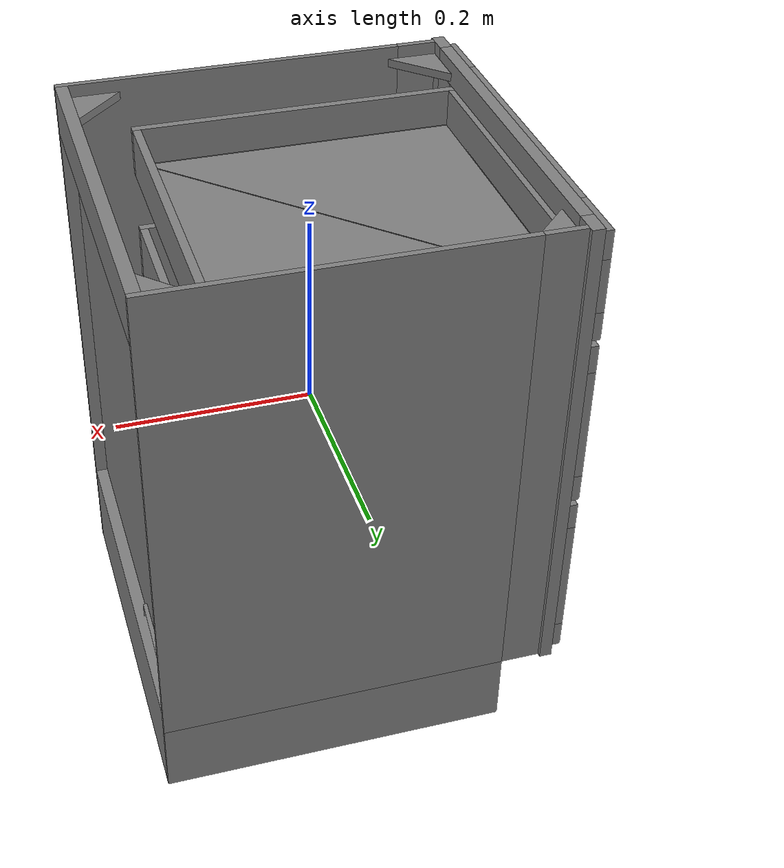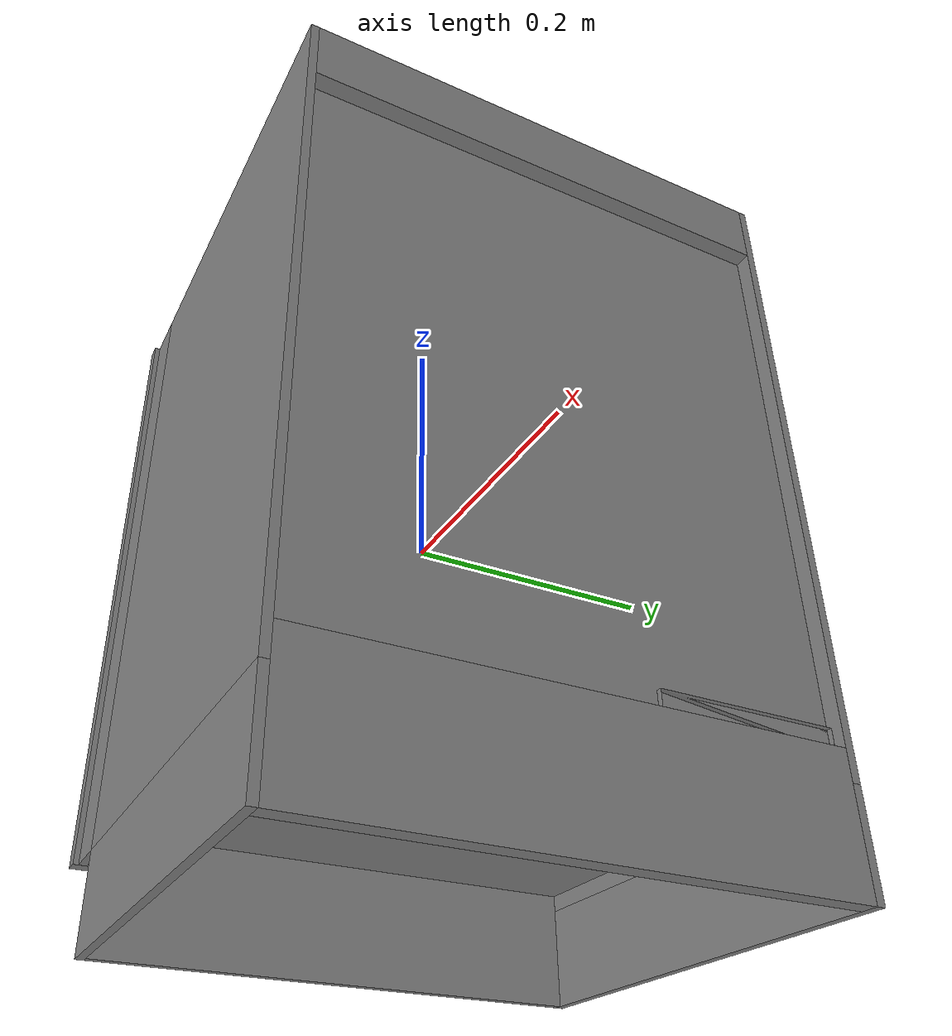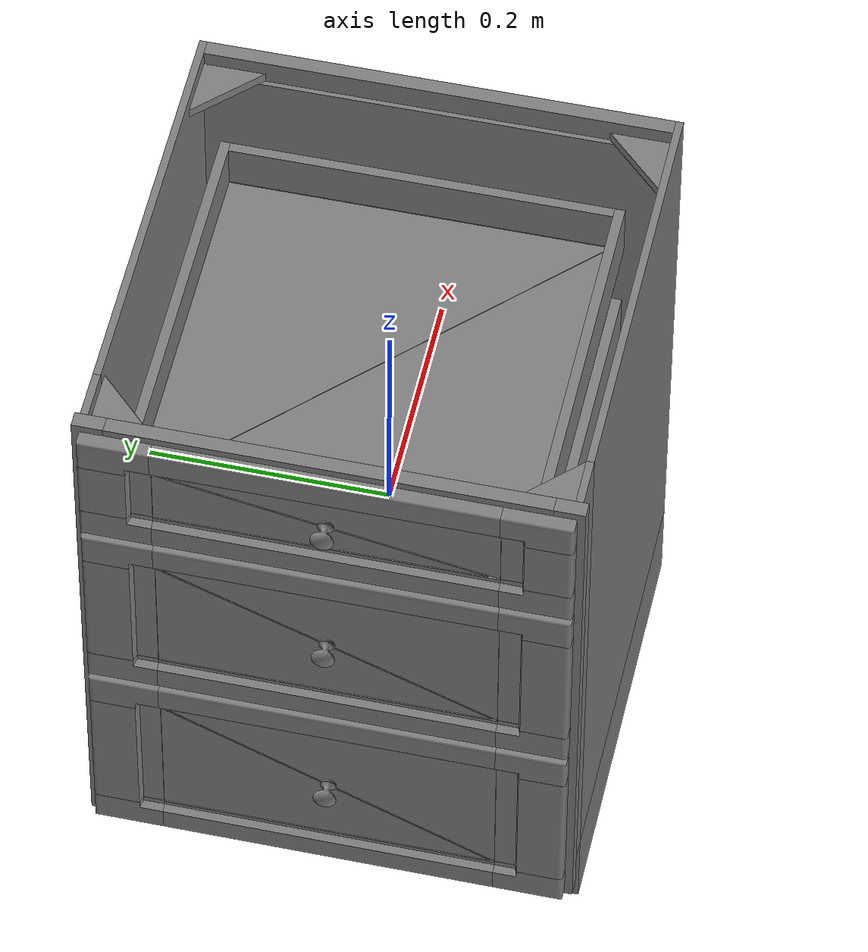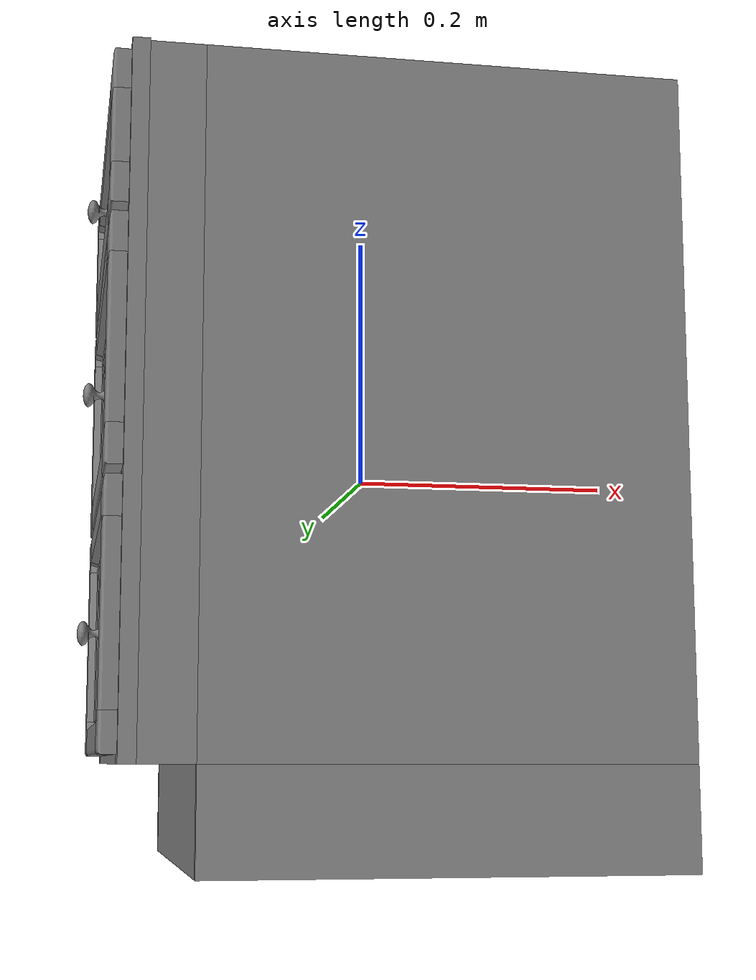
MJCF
<mujoco model="partnet_1566915c8a69d58812de5317fe5b354f">
    <compiler angle="radian" />
    <size njmax="500" nconmax="100" />
    <asset>
        <mesh name="original-86" file="original-86.stl" scale="0.4 0.4 0.4" />
        <mesh name="original-85" file="original-85.stl" scale="0.4 0.4 0.4" />
        <mesh name="original-82" file="original-82.stl" scale="0.4 0.4 0.4" />
        <mesh name="original-79" file="original-79.stl" scale="0.4 0.4 0.4" />
        <mesh name="original-83" file="original-83.stl" scale="0.4 0.4 0.4" />
        <mesh name="original-80" file="original-80.stl" scale="0.4 0.4 0.4" />
        <mesh name="original-84" file="original-84.stl" scale="0.4 0.4 0.4" />
        <mesh name="original-81" file="original-81.stl" scale="0.4 0.4 0.4" />
        <mesh name="original-88" file="original-88.stl" scale="0.4 0.4 0.4" />
        <mesh name="original-72" file="original-72.stl" scale="0.4 0.4 0.4" />
        <mesh name="original-89" file="original-89.stl" scale="0.4 0.4 0.4" />
        <mesh name="original-71" file="original-71.stl" scale="0.4 0.4 0.4" />
        <mesh name="original-76" file="original-76.stl" scale="0.4 0.4 0.4" />
        <mesh name="original-77" file="original-77.stl" scale="0.4 0.4 0.4" />
        <mesh name="original-75" file="original-75.stl" scale="0.4 0.4 0.4" />
        <mesh name="original-74" file="original-74.stl" scale="0.4 0.4 0.4" />
        <mesh name="original-90" file="original-90.stl" scale="0.4 0.4 0.4" />
        <mesh name="original-50" file="original-50.stl" scale="0.4 0.4 0.4" />
        <mesh name="original-57" file="original-57.stl" scale="0.4 0.4 0.4" />
        <mesh name="original-63" file="original-63.stl" scale="0.4 0.4 0.4" />
        <mesh name="original-60" file="original-60.stl" scale="0.4 0.4 0.4" />
        <mesh name="original-62" file="original-62.stl" scale="0.4 0.4 0.4" />
        <mesh name="original-59" file="original-59.stl" scale="0.4 0.4 0.4" />
        <mesh name="original-64" file="original-64.stl" scale="0.4 0.4 0.4" />
        <mesh name="original-58" file="original-58.stl" scale="0.4 0.4 0.4" />
        <mesh name="original-61" file="original-61.stl" scale="0.4 0.4 0.4" />
        <mesh name="original-66" file="original-66.stl" scale="0.4 0.4 0.4" />
        <mesh name="original-67" file="original-67.stl" scale="0.4 0.4 0.4" />
        <mesh name="original-49" file="original-49.stl" scale="0.4 0.4 0.4" />
        <mesh name="original-54" file="original-54.stl" scale="0.4 0.4 0.4" />
        <mesh name="original-55" file="original-55.stl" scale="0.4 0.4 0.4" />
        <mesh name="original-53" file="original-53.stl" scale="0.4 0.4 0.4" />
        <mesh name="original-52" file="original-52.stl" scale="0.4 0.4 0.4" />
        <mesh name="original-68" file="original-68.stl" scale="0.4 0.4 0.4" />
        <mesh name="original-28" file="original-28.stl" scale="0.4 0.4 0.4" />
        <mesh name="original-44" file="original-44.stl" scale="0.4 0.4 0.4" />
        <mesh name="original-41" file="original-41.stl" scale="0.4 0.4 0.4" />
        <mesh name="original-35" file="original-35.stl" scale="0.4 0.4 0.4" />
        <mesh name="original-39" file="original-39.stl" scale="0.4 0.4 0.4" />
        <mesh name="original-36" file="original-36.stl" scale="0.4 0.4 0.4" />
        <mesh name="original-42" file="original-42.stl" scale="0.4 0.4 0.4" />
        <mesh name="original-37" file="original-37.stl" scale="0.4 0.4 0.4" />
        <mesh name="original-40" file="original-40.stl" scale="0.4 0.4 0.4" />
        <mesh name="original-38" file="original-38.stl" scale="0.4 0.4 0.4" />
        <mesh name="original-45" file="original-45.stl" scale="0.4 0.4 0.4" />
        <mesh name="original-27" file="original-27.stl" scale="0.4 0.4 0.4" />
        <mesh name="original-32" file="original-32.stl" scale="0.4 0.4 0.4" />
        <mesh name="original-33" file="original-33.stl" scale="0.4 0.4 0.4" />
        <mesh name="original-30" file="original-30.stl" scale="0.4 0.4 0.4" />
        <mesh name="original-31" file="original-31.stl" scale="0.4 0.4 0.4" />
        <mesh name="original-46" file="original-46.stl" scale="0.4 0.4 0.4" />
        <mesh name="original-3" file="original-3.stl" scale="0.4 0.4 0.4" />
        <mesh name="original-7" file="original-7.stl" scale="0.4 0.4 0.4" />
        <mesh name="original-8" file="original-8.stl" scale="0.4 0.4 0.4" />
        <mesh name="original-24" file="original-24.stl" scale="0.4 0.4 0.4" />
        <mesh name="original-17" file="original-17.stl" scale="0.4 0.4 0.4" />
        <mesh name="original-6" file="original-6.stl" scale="0.4 0.4 0.4" />
        <mesh name="original-4" file="original-4.stl" scale="0.4 0.4 0.4" />
        <mesh name="original-11" file="original-11.stl" scale="0.4 0.4 0.4" />
        <mesh name="original-10" file="original-10.stl" scale="0.4 0.4 0.4" />
        <mesh name="original-15" file="original-15.stl" scale="0.4 0.4 0.4" />
        <mesh name="original-14" file="original-14.stl" scale="0.4 0.4 0.4" />
        <mesh name="original-91" file="original-91.stl" scale="0.4 0.4 0.4" />
        <mesh name="original-5" file="original-5.stl" scale="0.4 0.4 0.4" />
        <mesh name="original-2" file="original-2.stl" scale="0.4 0.4 0.4" />
        <mesh name="original-22" file="original-22.stl" scale="0.4 0.4 0.4" />
        <mesh name="original-23" file="original-23.stl" scale="0.4 0.4 0.4" />
        <mesh name="original-21" file="original-21.stl" scale="0.4 0.4 0.4" />
        <mesh name="original-20" file="original-20.stl" scale="0.4 0.4 0.4" />
        <mesh name="original-18" file="original-18.stl" scale="0.4 0.4 0.4" />
        <mesh name="original-12" file="original-12.stl" scale="0.4 0.4 0.4" />
        <mesh name="original-19" file="original-19.stl" scale="0.4 0.4 0.4" />
        <mesh name="original-16" file="original-16.stl" scale="0.4 0.4 0.4" />
    </asset>
    <worldbody>
    <body>
        <body name="object">
        <geom quat="0.5 0.5 -0.5 -0.5" type="mesh" group="0" mesh="original-3" />
        <geom quat="0.5 0.5 -0.5 -0.5" type="mesh" group="0" mesh="original-7" />
        <geom quat="0.5 0.5 -0.5 -0.5" type="mesh" group="0" mesh="original-8" />
        <geom quat="0.5 0.5 -0.5 -0.5" type="mesh" group="0" mesh="original-24" />
        <geom quat="0.5 0.5 -0.5 -0.5" type="mesh" group="0" mesh="original-17" />
        <geom quat="0.5 0.5 -0.5 -0.5" type="mesh" group="0" mesh="original-6" />
        <geom quat="0.5 0.5 -0.5 -0.5" type="mesh" group="0" mesh="original-4" />
        <geom quat="0.5 0.5 -0.5 -0.5" type="mesh" group="0" mesh="original-11" />
        <geom quat="0.5 0.5 -0.5 -0.5" type="mesh" group="0" mesh="original-10" />
        <geom quat="0.5 0.5 -0.5 -0.5" type="mesh" group="0" mesh="original-15" />
        <geom quat="0.5 0.5 -0.5 -0.5" type="mesh" group="0" mesh="original-14" />
        <geom quat="0.5 0.5 -0.5 -0.5" type="mesh" group="0" mesh="original-91" />
        <geom quat="0.5 0.5 -0.5 -0.5" type="mesh" group="0" mesh="original-5" />
        <geom quat="0.5 0.5 -0.5 -0.5" type="mesh" group="0" mesh="original-2" />
        <geom quat="0.5 0.5 -0.5 -0.5" type="mesh" group="0" mesh="original-22" />
        <geom quat="0.5 0.5 -0.5 -0.5" type="mesh" group="0" mesh="original-23" />
        <geom quat="0.5 0.5 -0.5 -0.5" type="mesh" group="0" mesh="original-21" />
        <geom quat="0.5 0.5 -0.5 -0.5" type="mesh" group="0" mesh="original-20" />
        <geom quat="0.5 0.5 -0.5 -0.5" type="mesh" group="0" mesh="original-18" />
        <geom quat="0.5 0.5 -0.5 -0.5" type="mesh" group="0" mesh="original-12" />
        <geom quat="0.5 0.5 -0.5 -0.5" type="mesh" group="0" mesh="original-19" />
        <geom quat="0.5 0.5 -0.5 -0.5" type="mesh" group="0" mesh="original-16" />
        <body name="link_2" pos="-0.20533480000000004 -0.02101172 -0.11882200000000001" quat="0.5 0.5 -0.5 -0.5">
            <inertial pos="-0.025670600000000002 -0.02176792 -0.13579000000000002" quat="0.706943 -0.0152278 0.0152368 0.706942" mass="44.3724" diaginertia="8.44742 5.25753 4.41421" />
            <joint name="joint_2" pos="0.0 0.0 0.0" axis="0 0 1" type="slide" limited="true" range="0.0 0.32000000000000006" />
            <geom pos="-0.02101172 0.11882200000000001 -0.20533480000000004" type="mesh" group="0" mesh="original-86" />
            <geom pos="-0.02101172 0.11882200000000001 -0.20533480000000004" type="mesh" group="0" mesh="original-85" />
            <geom pos="-0.02101172 0.11882200000000001 -0.20533480000000004" type="mesh" group="0" mesh="original-82" />
            <geom pos="-0.02101172 0.11882200000000001 -0.20533480000000004" type="mesh" group="0" mesh="original-79" />
            <geom pos="-0.02101172 0.11882200000000001 -0.20533480000000004" type="mesh" group="0" mesh="original-83" />
            <geom pos="-0.02101172 0.11882200000000001 -0.20533480000000004" type="mesh" group="0" mesh="original-80" />
            <geom pos="-0.02101172 0.11882200000000001 -0.20533480000000004" type="mesh" group="0" mesh="original-84" />
            <geom pos="-0.02101172 0.11882200000000001 -0.20533480000000004" type="mesh" group="0" mesh="original-81" />
            <geom pos="-0.02101172 0.11882200000000001 -0.20533480000000004" type="mesh" group="0" mesh="original-88" />
            <geom pos="-0.02101172 0.11882200000000001 -0.20533480000000004" type="mesh" group="0" mesh="original-72" />
            <geom pos="-0.02101172 0.11882200000000001 -0.20533480000000004" type="mesh" group="0" mesh="original-89" />
            <geom pos="-0.02101172 0.11882200000000001 -0.20533480000000004" type="mesh" group="0" mesh="original-71" />
            <geom pos="-0.02101172 0.11882200000000001 -0.20533480000000004" type="mesh" group="0" mesh="original-76" />
            <geom pos="-0.02101172 0.11882200000000001 -0.20533480000000004" type="mesh" group="0" mesh="original-77" />
            <geom pos="-0.02101172 0.11882200000000001 -0.20533480000000004" type="mesh" group="0" mesh="original-75" />
            <geom pos="-0.02101172 0.11882200000000001 -0.20533480000000004" type="mesh" group="0" mesh="original-74" />
            <geom pos="-0.02101172 0.11882200000000001 -0.20533480000000004" type="mesh" group="0" mesh="original-90" />
        </body>
        <body name="link_1" pos="0.18858960000000002 0.00876784 0.053413999999999996" quat="0.5 0.5 -0.5 -0.5">
            <inertial pos="0.00410892 -0.00603536 0.25672160000000005" quat="0.706911 -0.0166594 0.0166682 0.70691" mass="43.9123" diaginertia="8.35386 5.18171 4.34766" />
            <joint name="joint_1" pos="0.0 0.0 0.0" axis="0 0 1" type="slide" limited="true" range="0.0 0.32000000000000006" />
            <geom pos="0.00876784 -0.053413999999999996 0.18858960000000002" type="mesh" group="0" mesh="original-50" />
            <geom pos="0.00876784 -0.053413999999999996 0.18858960000000002" type="mesh" group="0" mesh="original-57" />
            <geom pos="0.00876784 -0.053413999999999996 0.18858960000000002" type="mesh" group="0" mesh="original-63" />
            <geom pos="0.00876784 -0.053413999999999996 0.18858960000000002" type="mesh" group="0" mesh="original-60" />
            <geom pos="0.00876784 -0.053413999999999996 0.18858960000000002" type="mesh" group="0" mesh="original-62" />
            <geom pos="0.00876784 -0.053413999999999996 0.18858960000000002" type="mesh" group="0" mesh="original-59" />
            <geom pos="0.00876784 -0.053413999999999996 0.18858960000000002" type="mesh" group="0" mesh="original-64" />
            <geom pos="0.00876784 -0.053413999999999996 0.18858960000000002" type="mesh" group="0" mesh="original-58" />
            <geom pos="0.00876784 -0.053413999999999996 0.18858960000000002" type="mesh" group="0" mesh="original-61" />
            <geom pos="0.00876784 -0.053413999999999996 0.18858960000000002" type="mesh" group="0" mesh="original-66" />
            <geom pos="0.00876784 -0.053413999999999996 0.18858960000000002" type="mesh" group="0" mesh="original-67" />
            <geom pos="0.00876784 -0.053413999999999996 0.18858960000000002" type="mesh" group="0" mesh="original-49" />
            <geom pos="0.00876784 -0.053413999999999996 0.18858960000000002" type="mesh" group="0" mesh="original-54" />
            <geom pos="0.00876784 -0.053413999999999996 0.18858960000000002" type="mesh" group="0" mesh="original-55" />
            <geom pos="0.00876784 -0.053413999999999996 0.18858960000000002" type="mesh" group="0" mesh="original-53" />
            <geom pos="0.00876784 -0.053413999999999996 0.18858960000000002" type="mesh" group="0" mesh="original-52" />
            <geom pos="0.00876784 -0.053413999999999996 0.18858960000000002" type="mesh" group="0" mesh="original-68" />
        </body>
        <body name="link_0" pos="0.988588 -0.00632668 0.1991976" quat="0.5 0.5 -0.5 -0.5">
            <inertial pos="-0.01098516 0.010621720000000001 1.059932" quat="0.707063 -0.0078916 0.00789768 0.707063" mass="26.7204" diaginertia="4.59751 2.62034 2.11927" />
            <joint name="joint_0" pos="0.0 0.0 0.0" axis="0 0 1" type="slide" limited="true" range="0.0 0.32000000000000006" />
            <geom pos="-0.00632668 -0.1991976 0.988588" type="mesh" group="0" mesh="original-28" />
            <geom pos="-0.00632668 -0.1991976 0.988588" type="mesh" group="0" mesh="original-44" />
            <geom pos="-0.00632668 -0.1991976 0.988588" type="mesh" group="0" mesh="original-41" />
            <geom pos="-0.00632668 -0.1991976 0.988588" type="mesh" group="0" mesh="original-35" />
            <geom pos="-0.00632668 -0.1991976 0.988588" type="mesh" group="0" mesh="original-39" />
            <geom pos="-0.00632668 -0.1991976 0.988588" type="mesh" group="0" mesh="original-36" />
            <geom pos="-0.00632668 -0.1991976 0.988588" type="mesh" group="0" mesh="original-42" />
            <geom pos="-0.00632668 -0.1991976 0.988588" type="mesh" group="0" mesh="original-37" />
            <geom pos="-0.00632668 -0.1991976 0.988588" type="mesh" group="0" mesh="original-40" />
            <geom pos="-0.00632668 -0.1991976 0.988588" type="mesh" group="0" mesh="original-38" />
            <geom pos="-0.00632668 -0.1991976 0.988588" type="mesh" group="0" mesh="original-45" />
            <geom pos="-0.00632668 -0.1991976 0.988588" type="mesh" group="0" mesh="original-27" />
            <geom pos="-0.00632668 -0.1991976 0.988588" type="mesh" group="0" mesh="original-32" />
            <geom pos="-0.00632668 -0.1991976 0.988588" type="mesh" group="0" mesh="original-33" />
            <geom pos="-0.00632668 -0.1991976 0.988588" type="mesh" group="0" mesh="original-30" />
            <geom pos="-0.00632668 -0.1991976 0.988588" type="mesh" group="0" mesh="original-31" />
            <geom pos="-0.00632668 -0.1991976 0.988588" type="mesh" group="0" mesh="original-46" />
        </body>
    </body>
        <site name="bottom_site" pos="0 0 -0.3" rgba="0 0 0 0" size="0.005" />
        <site name="top_site" pos="0 0 0.3" rgba="0 0 0 0" size="0.005" />
        <site name="horizontal_radius_site" pos="0.3 0 0" rgba="0 0 0 0" size="0.1" />
    </body>
    </worldbody>
</mujoco>
